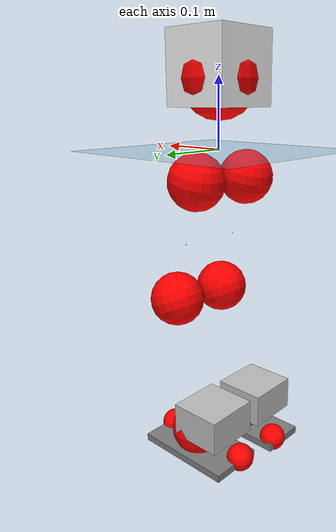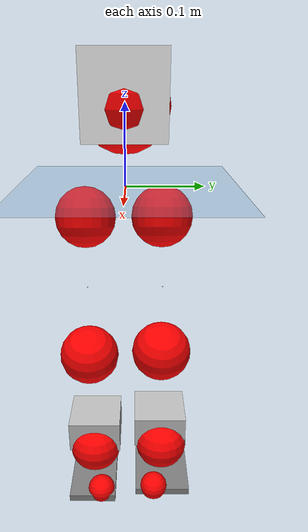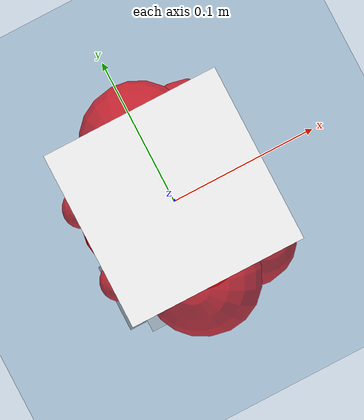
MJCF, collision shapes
<mujoco model="pi_12dof_release_v1">
  <compiler angle="radian" assetdir="assets" balanceinertia="true" inertiafromgeom="false"/>

  <option timestep="0.005" density="1.2" viscosity="2e-05"/>

  <size nkey="1"/>

  <visual>
    <quality shadowsize="8192"/>
    <map shadowclip="0.5"/>
  </visual>

  <default>
    <default class="/">
      <joint armature="0.01" damping="0.01" frictionloss="0.01"/>
      <geom contype="0" conaffinity="0" group="1" solref="-1000 -80"/>
      <site size="0.01 0.005 0.005" group="5"/>
      <general forcelimited="true" biastype="affine" gainprm="20" biasprm="0 -20 -0.5"/>
      <default class="foot">
        <geom size="0.0845 0.036 0.005" type="box" condim="6" group="4" priority="1" friction="0.9 0.2 0.2" solimp="0.015 1 0.005"/>
      </default>
      <default class="reward_collision_sphere">
        <geom group="5" rgba="1 0 0 1"/>
      </default>
    </default>
  </default>

  <asset>
    <texture type="skybox" colorspace="auto" name="//unnamed_texture_0" builtin="gradient" rgb1="0.95 0.95 0.95" rgb2="0.95 0.95 0.95" width="100" height="600"/>
    <texture type="2d" colorspace="auto" name="texplane" builtin="checker" rgb1="0.345 0.575 0.748" rgb2="0.345 0.575 0.748" markrgb="1 1 1" width="512" height="512"/>
    <material name="MatPlane" class="/" texture="texplane" texuniform="true" texrepeat="2 2" specular="0.9"/>
    <mesh name="baselink_1" class="/" file="baselink_1.STL"/>
    <mesh name="r_hip_pitch_link" class="/" file="r_hip_pitch_link.STL"/>
    <mesh name="r_hip_roll_link" class="/" file="r_hip_roll_link.STL"/>
    <mesh name="r_thigh_link" class="/" file="r_thigh_link.STL"/>
    <mesh name="r_calf_link" class="/" file="r_calf_link.STL"/>
    <mesh name="r_ankle_pitch_link" class="/" file="r_ankle_pitch_link.STL"/>
    <mesh name="r_ankle_roll_link" class="/" file="r_ankle_roll_link.STL"/>
    <mesh name="l_hip_pitch_link" class="/" file="l_hip_pitch_link.STL"/>
    <mesh name="l_hip_roll_link" class="/" file="l_hip_roll_link.STL"/>
    <mesh name="l_thigh_link" class="/" file="l_thigh_link.STL"/>
    <mesh name="l_calf_link" class="/" file="l_calf_link.STL"/>
    <mesh name="l_ankle_pitch_link" class="/" file="l_ankle_pitch_link.STL"/>
    <mesh name="l_ankle_roll_link" class="/" file="l_ankle_roll_link.STL"/>
  </asset>

  <worldbody>
    <geom name="floor" class="/" size="100 100 0.125" type="plane" group="0" material="MatPlane"/>
    <light name="toplight_shadow" class="/" pos="0 0 5" dir="0.0990148 0.0990148 -0.990148" type="directional" ambient="0.04 0.04 0.04" diffuse="0.55 0.55 0.55" specular="0.12 0.12 0.12"/>
    <light name="toplight_fill" class="/" pos="0 0 5" dir="0.0990148 0.0990148 -0.990148" type="directional" castshadow="false" ambient="0.04 0.04 0.04" diffuse="0.3 0.3 0.3" specular="0.08 0.08 0.08"/>
    <body name="trunk" pos="-0.00125839 0.000354656 0.0021069" quat="0.999999 0.000353109 0.00119154 -0.000416422">
      <inertial pos="0.00262366 -0.001682 0.0512761" quat="0.69544 0.00567695 0.0100453 0.718491" mass="2.21861" diaginertia="0.0117717 0.00112238 0.017179"/>
      <joint name="//unnamed_joint_0" type="free"/>
      <geom name="//unnamed_geom_1" class="/" type="mesh" density="0" rgba="1 1 1 1" mesh="baselink_1"/>
      <geom name="//unnamed_geom_2" class="/" size="0.0504885 0.0504885 0.0504885" pos="0 0 0.106389" type="box" rgba="1 1 1 1"/>
      <geom name="//unnamed_geom_3" class="reward_collision_sphere" size="0.0555374" pos="0 0 0.0930904"/>
      <site name="imu" class="/" pos="0.00558968 0.000108604 -0.00574513" size="0.0100977"/>
      <camera name="track" class="/" pos="0 -1.32087 0" quat="0.707107 0.707107 0 0" mode="trackcom"/>
      <camera name="ego_camera" class="/" pos="0.077926 0 0.239375" quat="-0.5 -0.5 0.5 0.5"/>
      <body name="r_hip_pitch_link" pos="-0.00178447 -0.0174205 -0.0463625" quat="0.992206 4.21063e-05 -0.124606 -8.62518e-05">
        <inertial pos="0.00097226 -0.0396033 -0.000110211" quat="-0.0180124 0.706164 -0.0285917 0.707242" mass="0.394846" diaginertia="0.000131477 1.20083e-05 0.000346532"/>
        <joint name="r_hip_pitch_joint" class="/" pos="0 0 0" axis="0.00158749 -0.999974 0.00702006" stiffness="0.00860239" range="-1.76919 1.23523" armature="0.00923219" damping="0.0138187" frictionloss="0.00882565"/>
        <geom name="//unnamed_geom_4" class="/" type="mesh" density="0" rgba="0.75294 0.75294 0.75294 1" mesh="r_hip_pitch_link"/>
        <geom name="//unnamed_geom_5" class="/" size="0.000504885 0.000504885 0.000504885" type="box" rgba="0.75294 0.75294 0.75294 1"/>
        <body name="r_hip_roll_link" pos="-0.00256342 -0.0366121 0.00252803" quat="1 -0.00018028 0.000635027 -0.000374265">
          <inertial pos="-0.00280741 -0.000274981 -0.0788383" quat="0.698346 -0.077558 -0.0793328 0.707109" mass="0.391343" diaginertia="0.000410467 3.52092e-05 0.000552092"/>
          <joint name="r_hip_roll_joint" class="/" pos="0 0 0" axis="-0.999915 0.012858 0.0022601" stiffness="0.00140454" range="-0.131572 0.493779" armature="0.00869129" damping="0.00838404" frictionloss="0.0105327"/>
          <geom name="//unnamed_geom_6" class="/" type="mesh" density="0" rgba="0.75294 0.75294 0.75294 1" mesh="r_hip_roll_link"/>
          <geom name="//unnamed_geom_7" class="/" size="0.000504885 0.000504885 0.000504885" type="box" rgba="0.75294 0.75294 0.75294 1"/>
          <geom name="//unnamed_geom_8" class="reward_collision_sphere" size="0.0403908"/>
          <body name="r_thigh_link" pos="0.00108268 0.00157698 -0.0932915" quat="1 0.000337043 -0.000328647 -0.000230879">
            <inertial pos="-0.00070381 0.00186712 -0.0660247" quat="0.736727 0.676189 -0.00118072 0.000738559" mass="0.116387" diaginertia="0.000147156 1.17413e-05 0.00024228"/>
            <joint name="r_thigh_joint" class="/" pos="0 0 0" axis="-0.00223085 0.00131495 -0.999997" stiffness="0.00918549" range="-0.353326 0.578534" armature="0.010651" damping="0" frictionloss="0.0114939"/>
            <geom name="//unnamed_geom_9" class="/" type="mesh" density="0" rgba="0.75294 0.75294 0.75294 1" mesh="r_thigh_link"/>
            <geom name="//unnamed_geom_10" class="/" size="0.000504885 0.000504885 0.000504885" type="box" rgba="0.75294 0.75294 0.75294 1"/>
            <body name="r_calf_link" pos="-0.000366333 0.00102534 -0.095256" quat="0.947625 -4.78456e-05 0.319384 -6.14533e-06">
              <inertial pos="-0.00322332 -0.000546442 -0.0956109" quat="0.999979 -0.00172404 -0.000152247 0.00623157" mass="0.848587" diaginertia="0.00414629 0.000446575 0.000704143"/>
              <joint name="r_calf_joint" class="/" pos="0 0 0" axis="-0.00452135 -0.999923 0.0115496" range="-1.64658 0.69749" armature="0.00859325" damping="0.000433693" frictionloss="0.00960231"/>
              <geom name="//unnamed_geom_11" class="/" type="mesh" density="0" rgba="0.75294 0.75294 0.75294 1" mesh="r_calf_link"/>
              <geom name="//unnamed_geom_12" class="/" size="0.000504885 0.000504885 0.000504885" type="box" rgba="0.75294 0.75294 0.75294 1"/>
              <geom name="//unnamed_geom_13" class="reward_collision_sphere" size="0.0403908"/>
              <body name="r_ankle_pitch_link" pos="0.00284789 -0.00201861 -0.187849" quat="0.980133 0.000676067 -0.19834 -0.000643608">
                <inertial pos="0.00615268 0.00112982 -0.00305" quat="-0.00791943 0.700662 -0.00615202 0.713423" mass="0.185464" diaginertia="0.000357885 2.70383e-05 0.000502713"/>
                <joint name="r_ankle_pitch_joint" class="/" pos="0 0 0" axis="-0.0050565 -0.999917 0.0118828" range="-1.26463 0.555636" armature="0.0115089" damping="0" frictionloss="0.0105218"/>
                <geom name="//unnamed_geom_14" class="/" type="mesh" density="0" rgba="0.75294 0.75294 0.75294 1" mesh="r_ankle_pitch_link"/>
                <geom name="//unnamed_geom_15" class="/" size="0.039381 0.0403908 0.0252443" type="box" rgba="0.75294 0.75294 0.75294 1"/>
                <body name="r_ankle_roll_link" pos="0.0758937 0.000111097 0.000116332" quat="0.999999 0.0012086 -0.000135854 0.00061663">
                  <inertial pos="-0.0271703 -0.000329488 -0.0196655" quat="0.557895 0.431913 0.433938 0.560269" mass="0.568845" diaginertia="0.00145352 0.000128896 0.00121977"/>
                  <joint name="r_ankle_roll_joint" class="/" pos="0 0 0" axis="-0.999887 -0.00786846 0.0128208" range="-0.0969238 0.138321" armature="0.0105176" damping="0.0113898" frictionloss="0.0107677"/>
                  <geom name="//unnamed_geom_16" class="/" type="mesh" density="0" rgba="0.75294 0.75294 0.75294 1" mesh="r_ankle_roll_link"/>
                  <geom name="//unnamed_geom_17" class="/" type="mesh" rgba="0.75294 0.75294 0.75294 1" mesh="r_ankle_roll_link"/>
                  <geom name="right_foot" class="foot" size="0.0844935 0.0344669 0.00547188" pos="-0.0529897 0 -0.058514"/>
                  <geom name="//unnamed_geom_19" class="reward_collision_sphere" size="0.0403908" pos="-0.0519506 0 -0.0265973"/>
                  <geom name="//unnamed_geom_20" class="reward_collision_sphere" size="0.0201954" pos="0.0155852 0.0132087 -0.0531945"/>
                  <geom name="//unnamed_geom_21" class="reward_collision_sphere" size="0.0201954" pos="-0.124682 0.0132087 -0.0531945"/>
                  <site name="right_foot" class="foot" pos="-0.0529897 0 -0.058514" size="0.0100977"/>
                </body>
              </body>
            </body>
          </body>
        </body>
      </body>
      <body name="l_hip_pitch_link" pos="0.000830833 0.012889 -0.0449299" quat="0.992195 7.85894e-05 -0.124692 -1.95357e-05">
        <inertial pos="0.000389428 0.0381184 -0.000917986" quat="-0.0401308 0.712655 0.0337896 0.69955" mass="0.405628" diaginertia="0.000156488 1.3221e-05 0.000408692"/>
        <joint name="l_hip_pitch_joint" class="/" pos="0 0 0" axis="-0.00424521 0.999988 -0.00235596" range="-1.24161 1.75094" armature="0.00962361" damping="0.0258786" frictionloss="0.00872229"/>
        <geom name="//unnamed_geom_22" class="/" type="mesh" density="0" rgba="0.75294 0.75294 0.75294 1" mesh="l_hip_pitch_link"/>
        <geom name="//unnamed_geom_23" class="/" size="0.000504885 0.000504885 0.000504885" type="box" rgba="0.75294 0.75294 0.75294 1"/>
        <body name="l_hip_roll_link" pos="-0.000781712 0.0344695 0.00309492" quat="0.999999 -0.000212154 0.00078911 0.000850982">
          <inertial pos="-0.00204589 0.0020216 -0.0815233" quat="0.699393 -0.0750277 -0.0785191 0.706438" mass="0.374993" diaginertia="0.000389013 3.4844e-05 0.000531532"/>
          <joint name="l_hip_roll_joint" class="/" pos="0 0 0" axis="-0.99994 -0.00459977 0.0099706" range="-0.459577 0.0984554" armature="0.00939876" damping="0.0180953" frictionloss="0.00866959"/>
          <geom name="//unnamed_geom_24" class="/" type="mesh" density="0" rgba="0.75294 0.75294 0.75294 1" mesh="l_hip_roll_link"/>
          <geom name="//unnamed_geom_25" class="/" size="0.000504885 0.000504885 0.000504885" type="box" rgba="0.75294 0.75294 0.75294 1"/>
          <geom name="//unnamed_geom_26" class="reward_collision_sphere" size="0.0403908"/>
          <body name="l_thigh_link" pos="-0.00235384 0.00186639 -0.0935715" quat="1 -0.000446334 5.67106e-05 0.000356708">
            <inertial pos="0.00297452 0.000596351 -0.0654344" quat="0.681985 0.731289 0.0106438 0.000734018" mass="0.115977" diaginertia="0.000145782 1.2122e-05 0.000245512"/>
            <joint name="l_thigh_joint" class="/" pos="0 0 0" axis="0.000291493 0.00329622 -0.999995" range="-0.618609 0.241174" armature="0.0110304" damping="0.00769023" frictionloss="0.0100407"/>
            <geom name="//unnamed_geom_27" class="/" type="mesh" density="0" rgba="0.75294 0.75294 0.75294 1" mesh="l_thigh_link"/>
            <geom name="//unnamed_geom_28" class="/" size="0.000504885 0.000504885 0.000504885" type="box" rgba="0.75294 0.75294 0.75294 1"/>
            <body name="l_calf_link" pos="-0.00075298 -0.000955492 -0.090661" quat="0.947514 -0.000110098 0.319714 -0.000246163">
              <inertial pos="-0.00256853 0.00444149 -0.0934091" quat="0.999988 0.00246371 0.00142224 0.00398238" mass="0.858091" diaginertia="0.00426999 0.000438606 0.000725523"/>
              <joint name="l_calf_joint" class="/" pos="0 0 0" axis="-0.00750019 0.999939 0.00815907" stiffness="0.00473973" range="-0.656453 1.69683" armature="0.0102987" damping="0" frictionloss="0.0112347"/>
              <geom name="//unnamed_geom_29" class="/" type="mesh" density="0" rgba="0.75294 0.75294 0.75294 1" mesh="l_calf_link"/>
              <geom name="//unnamed_geom_30" class="/" size="0.000504885 0.000504885 0.000504885" type="box" rgba="0.75294 0.75294 0.75294 1"/>
              <geom name="//unnamed_geom_31" class="reward_collision_sphere" size="0.0403908"/>
              <body name="l_ankle_pitch_link" pos="0.000143409 0.00338574 -0.187674" quat="0.979945 0.000424175 -0.199264 -0.000629488">
                <inertial pos="0.00442857 0.00215595 0.000485008" quat="-0.00359135 0.707428 0.00231878 0.706773" mass="0.169446" diaginertia="0.000348653 2.72142e-05 0.000483675"/>
                <joint name="l_ankle_pitch_joint" class="/" pos="0 0 0" axis="-0.00218013 0.999994 0.00273205" stiffness="0.000322007" range="-0.56412 1.24803" armature="0.00882238" damping="0.00886291" frictionloss="0.0113642"/>
                <geom name="//unnamed_geom_32" class="/" type="mesh" density="0" rgba="0.75294 0.75294 0.75294 1" mesh="l_ankle_pitch_link"/>
                <geom name="//unnamed_geom_33" class="/" size="0.039381 0.0403908 0.0252443" type="box" rgba="0.75294 0.75294 0.75294 1"/>
                <body name="l_ankle_roll_link" pos="0.0800314 0.0021777 -0.00042124" quat="1 -0.000258887 0.000296736 -0.00021349">
                  <inertial pos="-0.0230622 -0.00336168 -0.0183047" quat="0.561848 0.422776 0.442489 0.556588" mass="0.532022" diaginertia="0.00133188 0.00012947 0.00114235"/>
                  <joint name="l_ankle_roll_joint" class="/" pos="0 0 0" axis="-0.999993 -0.00139619 -0.00357505" range="-0.115446 0.0995026" armature="0.0113319" damping="0.013437" frictionloss="0.0114287"/>
                  <geom name="//unnamed_geom_34" class="/" type="mesh" density="0" rgba="0.75294 0.75294 0.75294 1" mesh="l_ankle_roll_link"/>
                  <geom name="//unnamed_geom_35" class="/" type="mesh" rgba="0.75294 0.75294 0.75294 1" mesh="l_ankle_roll_link"/>
                  <geom name="left_foot" class="foot" size="0.0765626 0.040619 0.00540558" pos="-0.0529897 0 -0.058514"/>
                  <geom name="//unnamed_geom_37" class="reward_collision_sphere" size="0.0403908" pos="-0.0519506 0 -0.0265973"/>
                  <geom name="//unnamed_geom_38" class="reward_collision_sphere" size="0.0201954" pos="0.0155852 -0.0132087 -0.0531945"/>
                  <geom name="//unnamed_geom_39" class="reward_collision_sphere" size="0.0201954" pos="-0.124682 -0.0132087 -0.0531945"/>
                  <site name="left_foot" class="foot" pos="-0.0529897 0 -0.058514" size="0.0100977"/>
                </body>
              </body>
            </body>
          </body>
        </body>
      </body>
    </body>
  </worldbody>

  <contact>
    <pair class="/" geom1="floor" geom2="right_foot" name="//unnamed_contact_1"/>
    <pair class="/" geom1="floor" geom2="left_foot" name="//unnamed_contact_0"/>
  </contact>

  <actuator>
    <general name="r_hip_pitch_joint" class="/" joint="r_hip_pitch_joint" forcerange="-22.9988 22.9988" gainprm="20.3876" biasprm="0 -20.3876 -0.476561"/>
    <general name="r_hip_roll_joint" class="/" joint="r_hip_roll_joint" forcerange="-21.502 21.502" gainprm="20.3876" biasprm="0 -20.3876 -0.476561"/>
    <general name="r_thigh_joint" class="/" joint="r_thigh_joint" forcerange="-20.4243 20.4243" gainprm="20.3876" biasprm="0 -20.3876 -0.476561"/>
    <general name="r_calf_joint" class="/" joint="r_calf_joint" forcerange="-22.2024 22.2024" gainprm="20.3876" biasprm="0 -20.3876 -0.476561"/>
    <general name="r_ankle_pitch_joint" class="/" joint="r_ankle_pitch_joint" forcerange="-21.2338 21.2338" gainprm="20.3876" biasprm="0 -20.3876 -0.476561"/>
    <general name="r_ankle_roll_joint" class="/" joint="r_ankle_roll_joint" forcerange="-21.7504 21.7504" gainprm="20.3876" biasprm="0 -20.3876 -0.476561"/>
    <general name="l_hip_pitch_joint" class="/" joint="l_hip_pitch_joint" forcerange="-19.3521 19.3521" gainprm="20.3876" biasprm="0 -20.3876 -0.476561"/>
    <general name="l_hip_roll_joint" class="/" joint="l_hip_roll_joint" forcerange="-20.5933 20.5933" gainprm="20.3876" biasprm="0 -20.3876 -0.476561"/>
    <general name="l_thigh_joint" class="/" joint="l_thigh_joint" forcerange="-19.5837 19.5837" gainprm="20.3876" biasprm="0 -20.3876 -0.476561"/>
    <general name="l_calf_joint" class="/" joint="l_calf_joint" forcerange="-20.7679 20.7679" gainprm="20.3876" biasprm="0 -20.3876 -0.476561"/>
    <general name="l_ankle_pitch_joint" class="/" joint="l_ankle_pitch_joint" forcerange="-23.2727 23.2727" gainprm="20.3876" biasprm="0 -20.3876 -0.476561"/>
    <general name="l_ankle_roll_joint" class="/" joint="l_ankle_roll_joint" forcerange="-20.7268 20.7268" gainprm="20.3876" biasprm="0 -20.3876 -0.476561"/>
  </actuator>

  <sensor>
    <gyro site="imu" name="imu_angular_velocity"/>
    <velocimeter site="imu" name="imu_linear_velocity"/>
    <framelinvel objtype="site" objname="left_foot" name="left_foot_global_linear_velocity"/>
    <framelinvel objtype="site" objname="right_foot" name="right_foot_global_linear_velocity"/>
  </sensor>

  <keyframe>
    <key name="home" qpos="0 0 0.291 1 0 0 0 0.4 0 0 -0.8 0.4 0 -0.4 0 0 0.8 -0.4 0"/>
  </keyframe>
</mujoco>
